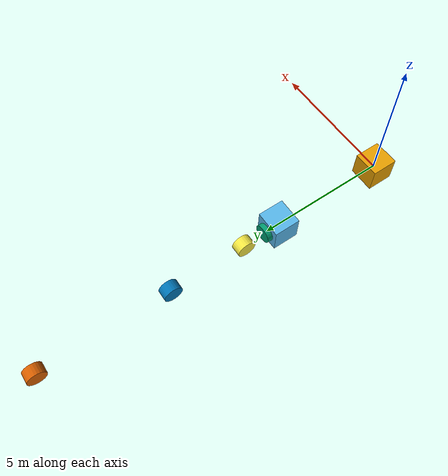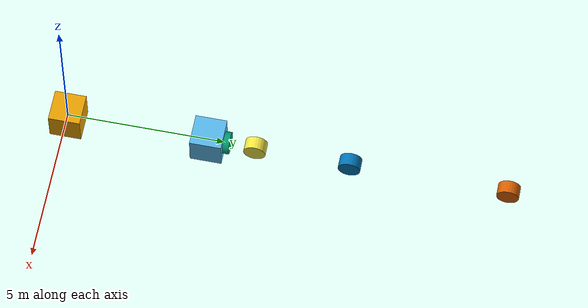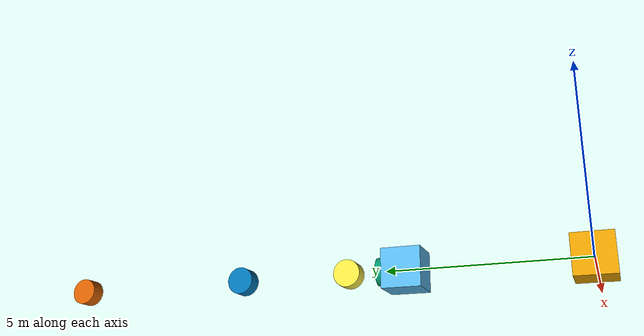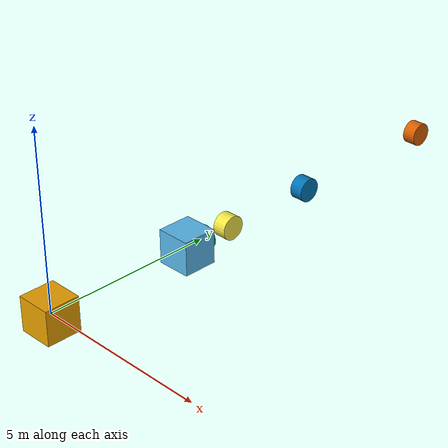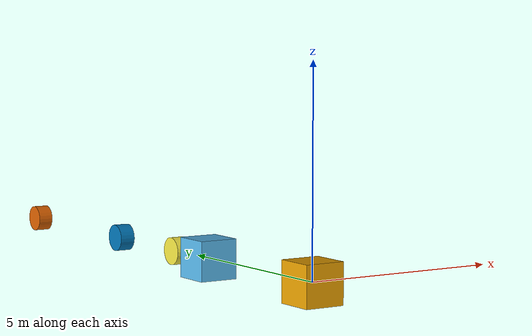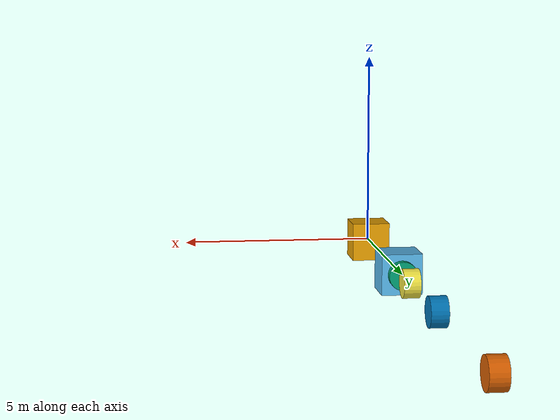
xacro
<?xml version="1.0" ?>

<robot name="periaxis_robot" xmlns:xacro="http://www.ros.org/wiki/xacro">
    <!-- World origin at centre of circle legs are radialy mounted from -->
    <link name="world_origin">
        <visual>
            <origin rpy="0 0 0" xyz="0 0 0"/>
            <geometry>
                <box size="1 1 1"/>
            </geometry>
        </visual>
    </link>

    <!-- fixed offset to leg 1 base; world_frame to base_frame -->
    <joint name="base_L1_fixedjoint" type="fixed">
        <origin xyz="0 5 0" rpy="-1.57 0 0"/>
        <parent link="world_origin"/>
        <child link="L1_base"/>
    </joint>

    <!-- Leg1 servo 1 base fixed base frame -->
    <link name="L1_base">
        <visual>
            <origin rpy="0 0 0" xyz="0 0 -0.5"/>
            <geometry>
                <box size="1 1 1"/>
            </geometry>
        </visual>
    </link>

    <!-- Leg1 servo joint 1; base frame to frame 0 (rotating finger plane) -->
    <joint name="L1_joint1" type="revolute">
        <axis xyz="0 0 1" />
        <limit effort="1000.0" lower="${-pi}" upper="${pi}" velocity="0.5" />
        <origin xyz="0 0 0" rpy="0 0 0" />
        <parent link="L1_base"/>
        <child link="L1_link1"/>
    </joint>

    <!-- Leg1 servo 1 rotating frame, link 1 (frame 0) -->
    <link name="L1_link1">
        <visual>
            <origin rpy="0 0 0" xyz="0 0 0"/>
            <geometry>
                <cylinder radius="0.35" length="0.4"/>
            </geometry>
        </visual>
    </link>

    <!-- Leg1 servo joint 2; frame 0 to frame 1 -->
    <joint name="L1_joint2" type="revolute">
        <axis xyz="0 0 1" />
        <limit effort="1000.0" lower="${-pi/2}" upper="${pi/2}" velocity="0.5" />
        <origin xyz="0 0 1" rpy="1.57 0 -1.57" />
        <parent link="L1_link1"/>
        <child link="L1_link2"/>
    </joint>

    <!-- Leg1 servo 2 (frame 1) -->
    <link name="L1_link2">
        <visual>
            <origin rpy="0 0 0" xyz="0 0 0"/>
            <geometry>
                <cylinder radius="0.35" length="0.4"/>
            </geometry>
        </visual>
    </link>

    <!-- Leg1 servo joint 3; frame 1 to frame 2 -->
    <joint name="L1_joint3" type="revolute">
        <axis xyz="0 0 1" />
        <limit effort="1000.0" lower="-3.14" upper="3.14" velocity="0.5" />
        <origin xyz="0 3 0" rpy="0 0 1.57" />
        <parent link="L1_link2"/>
        <child link="L1_link3"/>
    </joint>

    <!-- Leg1 servo 2 (frame 2) -->
    <link name="L1_link3">
        <visual>
            <origin rpy="0 0 0" xyz="0 0 0"/>
            <geometry>
                <cylinder radius="0.35" length="0.4"/>
            </geometry>
        </visual>
    </link>

    <!-- Leg1 servo 3 (frame 3) fixed frame to finger end -->
    <joint name="L1_fingerFixedJoint" type="fixed">
        <origin xyz="5 0 0" rpy="0 0 0"/>
        <parent link="L1_link3"/>
        <child link="L1_fingerTip"/>
    </joint>

    <!-- Leg1 servo 3 (frame 3) -->
    <link name="L1_fingerTip">
        <visual>
            <origin rpy="0 0 0" xyz="0 0 0"/>
            <geometry>
                <cylinder radius="0.35" length="0.4"/>
            </geometry>
        </visual>
    </link>

</robot>
